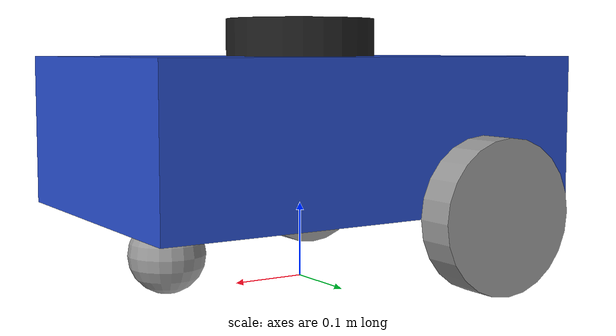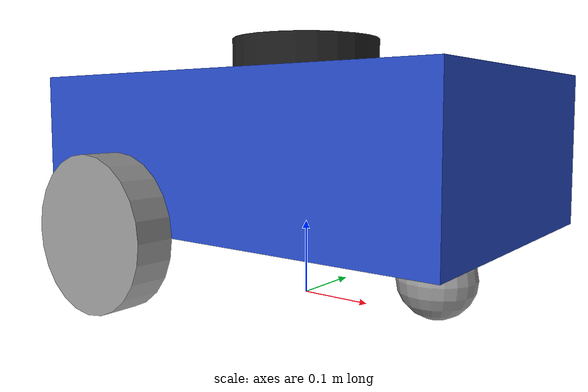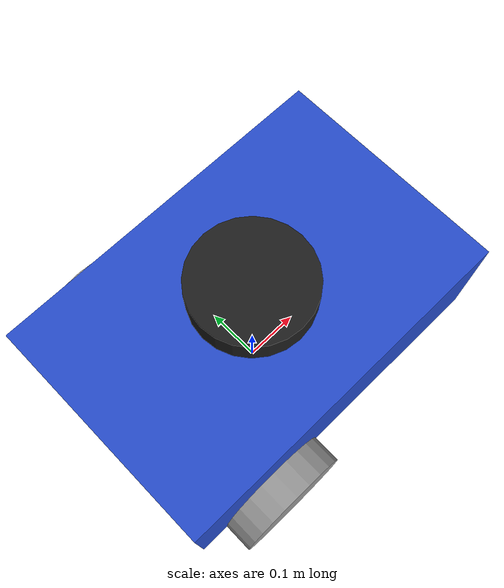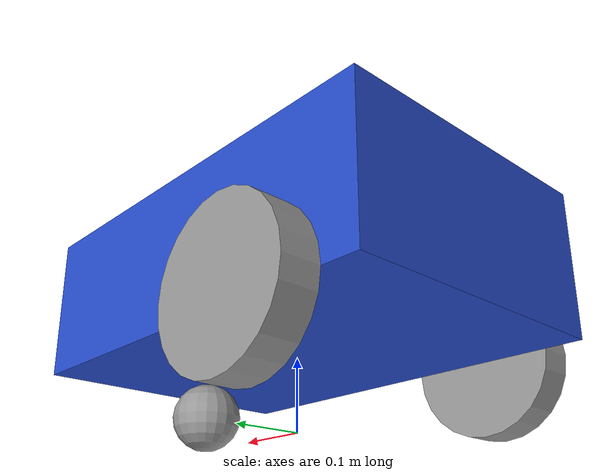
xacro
<?xml version="1.0"?>
<robot xmlns:xacro="http://www.ros.org/wiki/xacro">

    <xacro:property name="base_length" value="0.6"/>
    <xacro:property name="base_width" value="0.4"/>
    <xacro:property name="base_height" value="0.2"/>
    <xacro:property name="wheel_radius" value="0.1"/>
    <xacro:property name="wheel_length" value="0.05"/>

    <!--base footprint-->
    <link name="base_footprint"/>

    <joint name="base_joint" type="fixed">
        <parent link="base_footprint"/>
        <child link="base_link"/>
        <origin xyz="0 0 ${wheel_radius}" rpy="0 0 0"/>
    </joint>

    <!--base link-->
    <link name="base_link">
        <visual>
            <geometry>
                <box size="${base_length} ${base_width} ${base_height}"/>
            </geometry>
            <origin xyz="0 0 ${base_height / 2.0}" rpy="0 0 0"/>
            <material name="blue"/>
        </visual>
        <collision>
            <geometry>
                <box size="${base_length} ${base_width} ${base_height}"/>
            </geometry>
            <origin xyz="0 0 ${base_height / 2.0}" rpy="0 0 0"/>
        </collision>
        <xacro:box_inertia m="5.0" l="${2*base_length}" w="${2*base_width}" h="${2*base_height}"
                            xyz="0 0 ${base_height / 2.0}" rpy="0 0 0"/>
    </link>

    <!--wheel xacro macro-->
    <xacro:macro name="wheel_link" params="prefix">
        <link name="${prefix}_wheel_link">
            <visual>
                <geometry>
                    <cylinder radius="${wheel_radius}" length="${wheel_length}"/>
                </geometry>
                <origin xyz="0 0 0" rpy="${pi / 2.0} 0 0"/>
                <material name="grey"/>
            </visual>
            <collision>
                <geometry>
                    <sphere radius="${wheel_radius}" length="${wheel_length}"/>
                </geometry>
                <origin xyz="0 0 0" rpy="${pi / 2.0} 0 0"/>
            </collision>
            <xacro:wheel_inertia m="1.0" r="${2*wheel_radius}" h="${2*wheel_length}"
                                xyz="0 0 0" rpy="${pi / 2.0} 0 0"/>
        </link>
    </xacro:macro>

    <xacro:wheel_link prefix="right" />
    <xacro:wheel_link prefix="left" />

    <!--left wheel-->

    <joint name="base_left_wheel_joint" type="continuous">
        <parent link="base_link" />
        <child link="left_wheel_link" />
        <origin xyz="${-base_length / 4.0} ${(base_width + wheel_length) / 2.0} 0" rpy="0 0 0"/>
        <axis xyz="0 1 0" />
    </joint>

    <!--right wheel-->

    <joint name="base_right_wheel_joint" type="continuous">
        <parent link="base_link" />
        <child link="right_wheel_link" />
        <origin xyz="${-base_length / 4.0} ${-(base_width + wheel_length) / 2.0} 0" rpy="0 0 0"/>
        <axis xyz="0 1 0" />
    </joint>

    <!--caster wheel-->
    <link name="caster_wheel_link">
        <visual>
            <geometry>
                <sphere radius="${wheel_radius / 2.0}"/>
            </geometry>
            <origin xyz="0 0 0" rpy="0 0 0"/>
            <material name="grey"/>
        </visual>
        <collision>
            <geometry>
                <sphere radius="${wheel_radius / 2.0}"/>
            </geometry>
            <origin xyz="0 0 0" rpy="0 0 0"/>
        </collision>
        <xacro:caster_wheel_inertia m="0.5" r="${2*wheel_radius/2.0}"
                                    xyz="0 0 0" rpy="0 0 0"/>
    </link>

    <joint name="caster_wheel_link" type="fixed">
        <parent link="base_link" />
        <child link="caster_wheel_link" />
        <origin xyz="${base_length/3.0} 0 ${-wheel_radius / 2.0}" rpy="0 0 0"/>
    </joint>

    <!--LiDAR-->
    <link name="lidar_link">
        <visual>
            <geometry>
                <cylinder radius="0.1" length="0.05"/>
            </geometry>
            <material name="black"/>
        </visual>
    <sensor name="lidar_sensor" type="ray">
        <origin xyz="0 0 0"/>
        <ray>
            <scan>
                <horizontal>
                    <samples>360</samples>
                    <resolution>1</resolution>
                    <min_angle>-1.57</min_angle>
                    <max_angle>1.57</max_angle>
                </horizontal>
            </scan>
            <range>
                <min>0.1</min>
                <max>10.0</max>
            </range>
        </ray>
    </sensor>
    </link>

    <joint name="lidar_joint" type="fixed">
        <parent link="base_link"/>
        <child link="lidar_link"/>
        <origin xyz="0 0 0.225"/>
    </joint>

    <!--IMU-->
    <link name="imu_link">
        <visual>
            <geometry>
                <box size="0.05 0.05 0.02"/>
            </geometry>
            <material name="grey"/>
        </visual>
        <sensor name="imu_sensor" type="imu">
            <origin xyz="0 0 0.1"/>
            <imu>
                <always_on>true</always_on>
                <update_rate>50</update_rate>
            </imu>
        </sensor>
    </link>

    <joint name="imu_joint" type="fixed">
        <parent link="base_link"/>
        <child link="imu_link"/>
        <origin xyz="0 0 0.015"/>
    </joint>
</robot>
